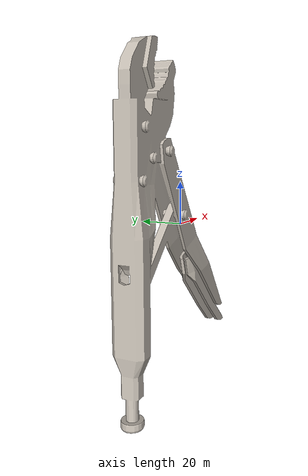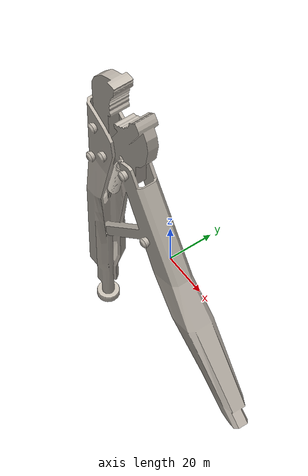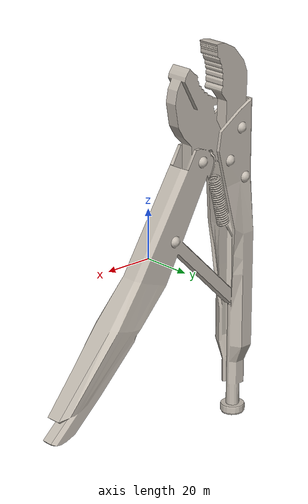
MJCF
<?xml version="1.0" encoding="utf-8"?>
<mujoco model="Vise grip">
  <default>
    <default class="visual">
      <geom group="2" type="mesh" contype="0" conaffinity="0"/>
    </default>
    <default class="collision">
      <geom group="3" type="mesh"/>
    </default>
  </default>
  <asset>
    <texture type="2d" name="Vise grip_BaseColor" file="Vise grip/Vise grip_BaseColor.png"/>
    <material name="material_0" texture="Vise grip_BaseColor" specular="1.0" shininess="0.5"/>
    <mesh file="Vise grip/Vise grip.obj" name="Vise grip"/>
    <mesh file="Vise grip/Vise grip_collision_0.obj" name="Vise grip_collision_0"/>
    <mesh file="Vise grip/Vise grip_collision_1.obj" name="Vise grip_collision_1"/>
    <mesh file="Vise grip/Vise grip_collision_2.obj" name="Vise grip_collision_2"/>
    <mesh file="Vise grip/Vise grip_collision_3.obj" name="Vise grip_collision_3"/>
    <mesh file="Vise grip/Vise grip_collision_4.obj" name="Vise grip_collision_4"/>
    <mesh file="Vise grip/Vise grip_collision_5.obj" name="Vise grip_collision_5"/>
    <mesh file="Vise grip/Vise grip_collision_6.obj" name="Vise grip_collision_6"/>
    <mesh file="Vise grip/Vise grip_collision_7.obj" name="Vise grip_collision_7"/>
    <mesh file="Vise grip/Vise grip_collision_8.obj" name="Vise grip_collision_8"/>
    <mesh file="Vise grip/Vise grip_collision_9.obj" name="Vise grip_collision_9"/>
    <mesh file="Vise grip/Vise grip_collision_10.obj" name="Vise grip_collision_10"/>
    <mesh file="Vise grip/Vise grip_collision_11.obj" name="Vise grip_collision_11"/>
    <mesh file="Vise grip/Vise grip_collision_12.obj" name="Vise grip_collision_12"/>
    <mesh file="Vise grip/Vise grip_collision_13.obj" name="Vise grip_collision_13"/>
    <mesh file="Vise grip/Vise grip_collision_14.obj" name="Vise grip_collision_14"/>
    <mesh file="Vise grip/Vise grip_collision_15.obj" name="Vise grip_collision_15"/>
    <mesh file="Vise grip/Vise grip_collision_16.obj" name="Vise grip_collision_16"/>
    <mesh file="Vise grip/Vise grip_collision_17.obj" name="Vise grip_collision_17"/>
    <mesh file="Vise grip/Vise grip_collision_18.obj" name="Vise grip_collision_18"/>
    <mesh file="Vise grip/Vise grip_collision_19.obj" name="Vise grip_collision_19"/>
    <mesh file="Vise grip/Vise grip_collision_20.obj" name="Vise grip_collision_20"/>
    <mesh file="Vise grip/Vise grip_collision_21.obj" name="Vise grip_collision_21"/>
    <mesh file="Vise grip/Vise grip_collision_22.obj" name="Vise grip_collision_22"/>
    <mesh file="Vise grip/Vise grip_collision_23.obj" name="Vise grip_collision_23"/>
    <mesh file="Vise grip/Vise grip_collision_24.obj" name="Vise grip_collision_24"/>
    <mesh file="Vise grip/Vise grip_collision_25.obj" name="Vise grip_collision_25"/>
    <mesh file="Vise grip/Vise grip_collision_26.obj" name="Vise grip_collision_26"/>
    <mesh file="Vise grip/Vise grip_collision_27.obj" name="Vise grip_collision_27"/>
    <mesh file="Vise grip/Vise grip_collision_28.obj" name="Vise grip_collision_28"/>
    <mesh file="Vise grip/Vise grip_collision_29.obj" name="Vise grip_collision_29"/>
  </asset>
  <worldbody>
    <body name="Vise grip">
      <inertial mass="0.1" diaginertia="0.001 0.001 0.001" pos="0 0 0"/>
      <geom material="material_0" mesh="Vise grip" class="visual"/>
      <geom mesh="Vise grip_collision_0" rgba="0.13760607120492196 0.24686866412256858 0.7287958321777651 1" class="collision"/>
      <geom mesh="Vise grip_collision_1" rgba="0.23932707620875882 0.060366369326647185 0.10957352711013224 1" class="collision"/>
      <geom mesh="Vise grip_collision_2" rgba="0.7926897161225568 0.8800764257086202 0.3016843862595303 1" class="collision"/>
      <geom mesh="Vise grip_collision_3" rgba="0.9469902401103462 0.353166354289579 0.48682810328506454 1" class="collision"/>
      <geom mesh="Vise grip_collision_4" rgba="0.8136055226638186 0.45786557257410276 0.7365993396896012 1" class="collision"/>
      <geom mesh="Vise grip_collision_5" rgba="0.32157967709269175 0.7042243558414536 0.08362805881735536 1" class="collision"/>
      <geom mesh="Vise grip_collision_6" rgba="0.697534244217547 0.9496316443677526 0.06753842594946902 1" class="collision"/>
      <geom mesh="Vise grip_collision_7" rgba="0.7733593475138457 0.8481593013464009 0.9935839567921074 1" class="collision"/>
      <geom mesh="Vise grip_collision_8" rgba="0.9148155420094831 0.534985253955341 0.7866963582568597 1" class="collision"/>
      <geom mesh="Vise grip_collision_9" rgba="0.5186988742548133 0.26016387326107604 0.04594666539722747 1" class="collision"/>
      <geom mesh="Vise grip_collision_10" rgba="0.5128837120851895 0.7483762419098147 0.551097621763995 1" class="collision"/>
      <geom mesh="Vise grip_collision_11" rgba="0.9653363272918566 0.0971172115483303 0.4316838752961073 1" class="collision"/>
      <geom mesh="Vise grip_collision_12" rgba="0.9758744895294963 0.993890500596038 0.4065315348273504 1" class="collision"/>
      <geom mesh="Vise grip_collision_13" rgba="0.8425515525097153 0.9123856398799365 0.3043544488508748 1" class="collision"/>
      <geom mesh="Vise grip_collision_14" rgba="0.8890668604559726 0.6713590833577966 0.4090887954283988 1" class="collision"/>
      <geom mesh="Vise grip_collision_15" rgba="0.6556696403202499 0.4310358963674169 0.5082582240308828 1" class="collision"/>
      <geom mesh="Vise grip_collision_16" rgba="0.9679046273005821 0.488800506775641 0.024559509172868643 1" class="collision"/>
      <geom mesh="Vise grip_collision_17" rgba="0.6189133525685343 0.6305137849818082 0.15597060834003562 1" class="collision"/>
      <geom mesh="Vise grip_collision_18" rgba="0.27602774310064015 0.4294836199097829 0.7216482560412603 1" class="collision"/>
      <geom mesh="Vise grip_collision_19" rgba="0.1688139227950658 0.038717703232328815 0.5162136886699701 1" class="collision"/>
      <geom mesh="Vise grip_collision_20" rgba="0.43844551200002657 0.5976036442182625 0.10672270392689054 1" class="collision"/>
      <geom mesh="Vise grip_collision_21" rgba="0.8545063860722116 0.28482702971400886 0.9238434282539707 1" class="collision"/>
      <geom mesh="Vise grip_collision_22" rgba="0.2616195005163976 0.47602468514032525 0.15113339187826946 1" class="collision"/>
      <geom mesh="Vise grip_collision_23" rgba="0.6400669430595578 0.7641491895008354 0.31375693276462346 1" class="collision"/>
      <geom mesh="Vise grip_collision_24" rgba="0.42211593404228254 0.54972633335631 0.5761045854089261 1" class="collision"/>
      <geom mesh="Vise grip_collision_25" rgba="0.8667262933806483 0.8993294437259345 0.009425995487530536 1" class="collision"/>
      <geom mesh="Vise grip_collision_26" rgba="0.2967162372297535 0.2063364150908592 0.30521191891582167 1" class="collision"/>
      <geom mesh="Vise grip_collision_27" rgba="0.9447555260577438 0.5264633393103636 0.7231582527509617 1" class="collision"/>
      <geom mesh="Vise grip_collision_28" rgba="0.3142967545166968 0.9370597768796103 0.6707192453691895 1" class="collision"/>
      <geom mesh="Vise grip_collision_29" rgba="0.004766120635333881 0.534729028500196 0.4960989034013177 1" class="collision"/>
    </body>
  </worldbody>
</mujoco>
